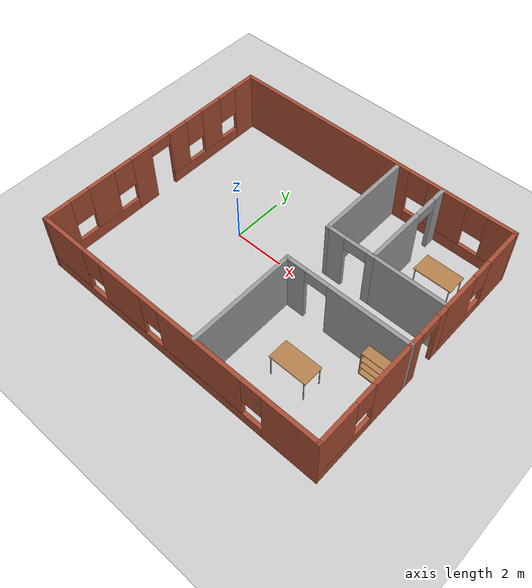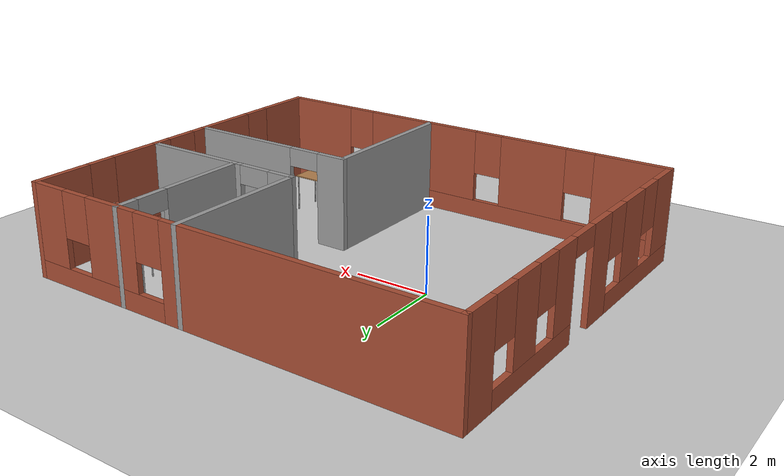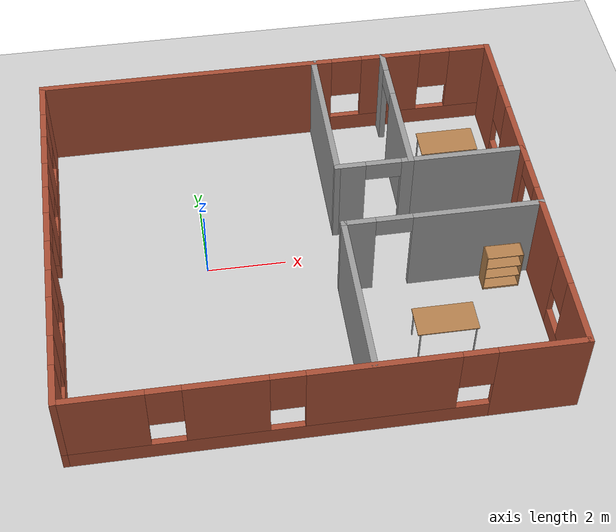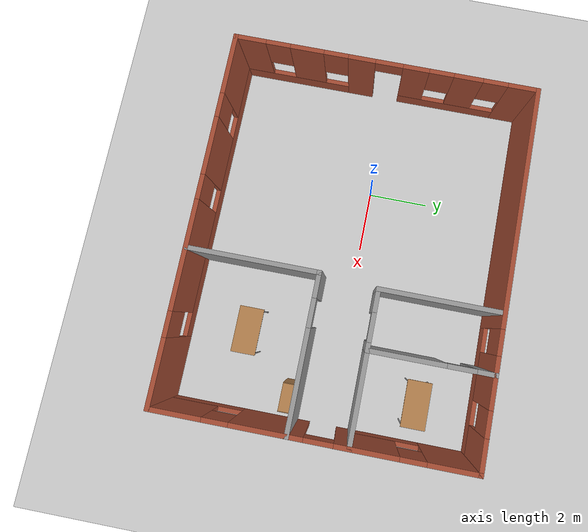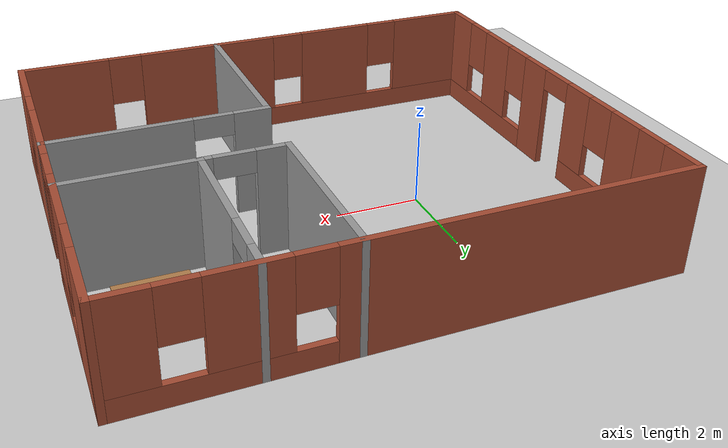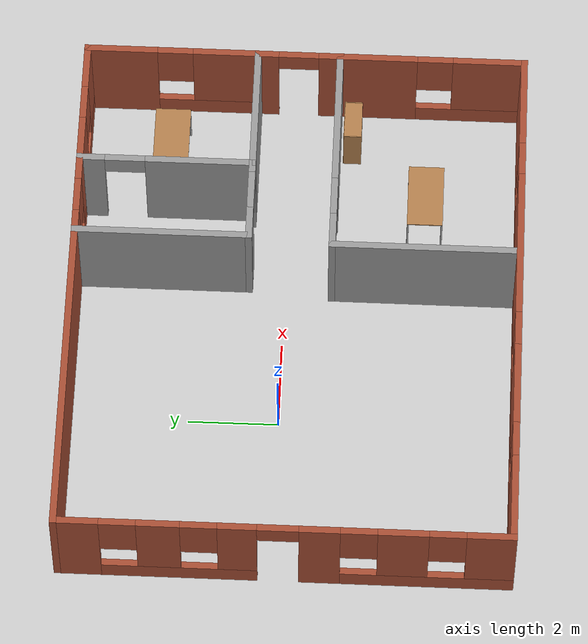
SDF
<sdf version="1.6">
 <world name="default">
  <model name="ground_plane">
   <static>1</static>
   <link name="link">
    <collision name="collision">
     <geometry><plane><normal>0 0 1</normal><size>100 100</size></plane></geometry>
     <surface>
      <contact><collide_bitmask>65535</collide_bitmask></contact>
      <friction><ode><mu>100</mu><mu2>50</mu2></ode></friction>
     </surface>
    </collision>
    <visual name="visual">
     <cast_shadows>0</cast_shadows>
     <geometry><plane><normal>0 0 1</normal><size>100 100</size></plane></geometry>
     <material>
      <script><uri>file://media/materials/scripts/gazebo.material</uri><name>Gazebo/Grey</name></script>
     </material>
    </visual>
   </link>
  </model>
  <model name="Apartment">
   <pose>2.18639 -0.27323 0 0 -0 0</pose>
   <link name="Wall_10">
    <pose>5.925 3 0 0 0 -1.57075</pose>
    <visual name="Wall_10_Visual_0">
     <pose>-1.1747 0 1.25 0 -0 0</pose>
     <geometry><box><size>1.65061 0.15 2.5</size></box></geometry>
     <material>
      <script><uri>file://media/materials/scripts/gazebo.material</uri><name>Gazebo/Bricks</name></script>
      <ambient>1 1 1 1</ambient>
     </material>
     <meta><layer>0</layer></meta>
    </visual>
    <collision name="Wall_10_Collision_0">
     <geometry><box><size>1.65061 0.15 2.5</size></box></geometry>
     <pose>-1.1747 0 1.25 0 -0 0</pose>
    </collision>
    <visual name="Wall_10_Visual_1">
     <pose>0.825305 0 0.25 0 -0 0</pose>
     <geometry><box><size>2.34939 0.15 0.5</size></box></geometry>
     <material>
      <script><uri>file://media/materials/scripts/gazebo.material</uri><name>Gazebo/Bricks</name></script>
      <ambient>1 1 1 1</ambient>
     </material>
     <meta><layer>0</layer></meta>
    </visual>
    <collision name="Wall_10_Collision_1">
     <geometry><box><size>2.34939 0.15 0.5</size></box></geometry>
     <pose>0.825305 0 0.25 0 -0 0</pose>
    </collision>
    <visual name="Wall_10_Visual_2">
     <pose>1.22531 0 1.5 0 -0 0</pose>
     <geometry><box><size>1.54939 0.15 2</size></box></geometry>
     <material>
      <script><uri>file://media/materials/scripts/gazebo.material</uri><name>Gazebo/Bricks</name></script>
      <ambient>1 1 1 1</ambient>
     </material>
     <meta><layer>0</layer></meta>
    </visual>
    <collision name="Wall_10_Collision_2">
     <geometry><box><size>1.54939 0.15 2</size></box></geometry>
     <pose>1.22531 0 1.5 0 -0 0</pose>
    </collision>
    <visual name="Wall_10_Visual_3">
     <pose>0.05061 0 1.9 0 -0 0</pose>
     <geometry><box><size>0.8 0.15 1.2</size></box></geometry>
     <material>
      <script><uri>file://media/materials/scripts/gazebo.material</uri><name>Gazebo/Bricks</name></script>
      <ambient>1 1 1 1</ambient>
     </material>
     <meta><layer>0</layer></meta>
    </visual>
    <collision name="Wall_10_Collision_3">
     <geometry><box><size>0.8 0.15 1.2</size></box></geometry>
     <pose>0.05061 0 1.9 0 -0 0</pose>
    </collision>
   </link>
   <link name="Wall_12">
    <collision name="Wall_12_Collision">
     <geometry><box><size>3 0.15 2.5</size></box></geometry>
     <pose>0 0 1.25 0 -0 0</pose>
    </collision>
    <visual name="Wall_12_Visual">
     <pose>0 0 1.25 0 -0 0</pose>
     <geometry><box><size>3 0.15 2.5</size></box></geometry>
     <material>
      <script><uri>file://media/materials/scripts/gazebo.material</uri><name>Gazebo/Grey</name></script>
      <ambient>1 1 1 1</ambient>
     </material>
     <meta><layer>0</layer></meta>
    </visual>
    <pose>4.50008 1.07506 0 0 -0 3.14159</pose>
   </link>
   <link name="Wall_14">
    <pose>3.07508 3.00006 0 0 -0 1.5708</pose>
    <visual name="Wall_14_Visual_0">
     <pose>-0.764861 0 1.25 0 -0 0</pose>
     <geometry><box><size>2.47028 0.15 2.5</size></box></geometry>
     <material>
      <script><uri>file://media/materials/scripts/gazebo.material</uri><name>Gazebo/Grey</name></script>
      <ambient>1 1 1 1</ambient>
     </material>
     <meta><layer>0</layer></meta>
    </visual>
    <collision name="Wall_14_Collision_0">
     <geometry><box><size>2.47028 0.15 2.5</size></box></geometry>
     <pose>-0.764861 0 1.25 0 -0 0</pose>
    </collision>
    <visual name="Wall_14_Visual_1">
     <pose>1.68514 0 1.25 0 -0 0</pose>
     <geometry><box><size>0.629722 0.15 2.5</size></box></geometry>
     <material>
      <script><uri>file://media/materials/scripts/gazebo.material</uri><name>Gazebo/Grey</name></script>
      <ambient>1 1 1 1</ambient>
     </material>
     <meta><layer>0</layer></meta>
    </visual>
    <collision name="Wall_14_Collision_1">
     <geometry><box><size>0.629722 0.15 2.5</size></box></geometry>
     <pose>1.68514 0 1.25 0 -0 0</pose>
    </collision>
    <visual name="Wall_14_Visual_2">
     <pose>0.920278 0 2.25 0 -0 0</pose>
     <geometry><box><size>0.9 0.15 0.5</size></box></geometry>
     <material>
      <script><uri>file://media/materials/scripts/gazebo.material</uri><name>Gazebo/Grey</name></script>
      <ambient>1 1 1 1</ambient>
     </material>
     <meta><layer>0</layer></meta>
    </visual>
    <collision name="Wall_14_Collision_2">
     <geometry><box><size>0.9 0.15 0.5</size></box></geometry>
     <pose>0.920278 0 2.25 0 -0 0</pose>
    </collision>
   </link>
   <link name="Wall_16">
    <pose>2.15008 1.07506 0 0 -0 3.14159</pose>
    <visual name="Wall_16_Visual_0">
     <pose>-0.843764 0 1.25 0 -0 0</pose>
     <geometry><box><size>0.312472 0.15 2.5</size></box></geometry>
     <material>
      <script><uri>file://media/materials/scripts/gazebo.material</uri><name>Gazebo/Grey</name></script>
      <ambient>1 1 1 1</ambient>
     </material>
     <meta><layer>0</layer></meta>
    </visual>
    <collision name="Wall_16_Collision_0">
     <geometry><box><size>0.312472 0.15 2.5</size></box></geometry>
     <pose>-0.843764 0 1.25 0 -0 0</pose>
    </collision>
    <visual name="Wall_16_Visual_1">
     <pose>0.606236 0 1.25 0 -0 0</pose>
     <geometry><box><size>0.787528 0.15 2.5</size></box></geometry>
     <material>
      <script><uri>file://media/materials/scripts/gazebo.material</uri><name>Gazebo/Grey</name></script>
      <ambient>1 1 1 1</ambient>
     </material>
     <meta><layer>0</layer></meta>
    </visual>
    <collision name="Wall_16_Collision_1">
     <geometry><box><size>0.787528 0.15 2.5</size></box></geometry>
     <pose>0.606236 0 1.25 0 -0 0</pose>
    </collision>
    <visual name="Wall_16_Visual_2">
     <pose>-0.237528 0 2.25 0 -0 0</pose>
     <geometry><box><size>0.9 0.15 0.5</size></box></geometry>
     <material>
      <script><uri>file://media/materials/scripts/gazebo.material</uri><name>Gazebo/Grey</name></script>
      <ambient>1 1 1 1</ambient>
     </material>
     <meta><layer>0</layer></meta>
    </visual>
    <collision name="Wall_16_Collision_2">
     <geometry><box><size>0.9 0.15 0.5</size></box></geometry>
     <pose>-0.237528 0 2.25 0 -0 0</pose>
    </collision>
   </link>
   <link name="Wall_18">
    <collision name="Wall_18_Collision">
     <geometry><box><size>4 0.15 2.5</size></box></geometry>
     <pose>0 0 1.25 0 -0 0</pose>
    </collision>
    <visual name="Wall_18_Visual">
     <pose>0 0 1.25 0 -0 0</pose>
     <geometry><box><size>4 0.15 2.5</size></box></geometry>
     <material>
      <script><uri>file://media/materials/scripts/gazebo.material</uri><name>Gazebo/Grey</name></script>
      <ambient>1 1 1 1</ambient>
     </material>
     <meta><layer>0</layer></meta>
    </visual>
    <pose>1.22508 3.00006 0 0 -0 1.5708</pose>
   </link>
   <link name="Wall_2">
    <pose>-8e-05 4.92495 0 0 -0 0</pose>
    <visual name="Wall_2_Visual_0">
     <pose>-2.14775 0 1.25 0 -0 0</pose>
     <geometry><box><size>7.7045 0.15 2.5</size></box></geometry>
     <material>
      <script><uri>file://media/materials/scripts/gazebo.material</uri><name>Gazebo/Bricks</name></script>
      <ambient>1 1 1 1</ambient>
     </material>
     <meta><layer>0</layer></meta>
    </visual>
    <collision name="Wall_2_Collision_0">
     <geometry><box><size>7.7045 0.15 2.5</size></box></geometry>
     <pose>-2.14775 0 1.25 0 -0 0</pose>
    </collision>
    <visual name="Wall_2_Visual_1">
     <pose>3.85225 0 0.25 0 -0 0</pose>
     <geometry><box><size>4.2955 0.15 0.5</size></box></geometry>
     <material>
      <script><uri>file://media/materials/scripts/gazebo.material</uri><name>Gazebo/Bricks</name></script>
      <ambient>1 1 1 1</ambient>
     </material>
     <meta><layer>0</layer></meta>
    </visual>
    <collision name="Wall_2_Collision_1">
     <geometry><box><size>4.2955 0.15 0.5</size></box></geometry>
     <pose>3.85225 0 0.25 0 -0 0</pose>
    </collision>
    <visual name="Wall_2_Visual_2">
     <pose>3.29794 0 1.5 0 -0 0</pose>
     <geometry><box><size>1.58688 0.15 2</size></box></geometry>
     <material>
      <script><uri>file://media/materials/scripts/gazebo.material</uri><name>Gazebo/Bricks</name></script>
      <ambient>1 1 1 1</ambient>
     </material>
     <meta><layer>0</layer></meta>
    </visual>
    <collision name="Wall_2_Collision_2">
     <geometry><box><size>1.58688 0.15 2</size></box></geometry>
     <pose>3.29794 0 1.5 0 -0 0</pose>
    </collision>
    <visual name="Wall_2_Visual_3">
     <pose>5.44569 0 1.5 0 -0 0</pose>
     <geometry><box><size>1.10862 0.15 2</size></box></geometry>
     <material>
      <script><uri>file://media/materials/scripts/gazebo.material</uri><name>Gazebo/Bricks</name></script>
      <ambient>1 1 1 1</ambient>
     </material>
     <meta><layer>0</layer></meta>
    </visual>
    <collision name="Wall_2_Collision_3">
     <geometry><box><size>1.10862 0.15 2</size></box></geometry>
     <pose>5.44569 0 1.5 0 -0 0</pose>
    </collision>
    <visual name="Wall_2_Visual_4">
     <pose>2.1045 0 1.9 0 -0 0</pose>
     <geometry><box><size>0.8 0.15 1.2</size></box></geometry>
     <material>
      <script><uri>file://media/materials/scripts/gazebo.material</uri><name>Gazebo/Bricks</name></script>
      <ambient>1 1 1 1</ambient>
     </material>
     <meta><layer>0</layer></meta>
    </visual>
    <collision name="Wall_2_Collision_4">
     <geometry><box><size>0.8 0.15 1.2</size></box></geometry>
     <pose>2.1045 0 1.9 0 -0 0</pose>
    </collision>
    <visual name="Wall_2_Visual_5">
     <pose>4.49137 0 1.9 0 -0 0</pose>
     <geometry><box><size>0.8 0.15 1.2</size></box></geometry>
     <material>
      <script><uri>file://media/materials/scripts/gazebo.material</uri><name>Gazebo/Bricks</name></script>
      <ambient>1 1 1 1</ambient>
     </material>
     <meta><layer>0</layer></meta>
    </visual>
    <collision name="Wall_2_Collision_5">
     <geometry><box><size>0.8 0.15 1.2</size></box></geometry>
     <pose>4.49137 0 1.9 0 -0 0</pose>
    </collision>
   </link>
   <link name="Wall_20">
    <pose>5.92508 0.150055 0 0 0 -1.5708</pose>
    <visual name="Wall_20_Visual_0">
     <pose>-0.728955 0 1.25 0 -0 0</pose>
     <geometry><box><size>0.54209 0.15 2.5</size></box></geometry>
     <material>
      <script><uri>file://media/materials/scripts/gazebo.material</uri><name>Gazebo/Bricks</name></script>
      <ambient>1 1 1 1</ambient>
     </material>
     <meta><layer>0</layer></meta>
    </visual>
    <collision name="Wall_20_Collision_0">
     <geometry><box><size>0.54209 0.15 2.5</size></box></geometry>
     <pose>-0.728955 0 1.25 0 -0 0</pose>
    </collision>
    <visual name="Wall_20_Visual_1">
     <pose>0.721045 0 1.25 0 -0 0</pose>
     <geometry><box><size>0.55791 0.15 2.5</size></box></geometry>
     <material>
      <script><uri>file://media/materials/scripts/gazebo.material</uri><name>Gazebo/Bricks</name></script>
      <ambient>1 1 1 1</ambient>
     </material>
     <meta><layer>0</layer></meta>
    </visual>
    <collision name="Wall_20_Collision_1">
     <geometry><box><size>0.55791 0.15 2.5</size></box></geometry>
     <pose>0.721045 0 1.25 0 -0 0</pose>
    </collision>
    <visual name="Wall_20_Visual_2">
     <pose>-0.00791 0 2.25 0 -0 0</pose>
     <geometry><box><size>0.9 0.15 0.5</size></box></geometry>
     <material>
      <script><uri>file://media/materials/scripts/gazebo.material</uri><name>Gazebo/Bricks</name></script>
      <ambient>1 1 1 1</ambient>
     </material>
     <meta><layer>0</layer></meta>
    </visual>
    <collision name="Wall_20_Collision_2">
     <geometry><box><size>0.9 0.15 0.5</size></box></geometry>
     <pose>-0.00791 0 2.25 0 -0 0</pose>
    </collision>
   </link>
   <link name="Wall_22">
    <pose>3.50008 -0.774945 0 0 -0 3.14159</pose>
    <visual name="Wall_22_Visual_0">
     <pose>-0.878308 0 1.25 0 -0 0</pose>
     <geometry><box><size>3.24338 0.15 2.5</size></box></geometry>
     <material>
      <script><uri>file://media/materials/scripts/gazebo.material</uri><name>Gazebo/Grey</name></script>
      <ambient>1 1 1 1</ambient>
     </material>
     <meta><layer>0</layer></meta>
    </visual>
    <collision name="Wall_22_Collision_0">
     <geometry><box><size>3.24338 0.15 2.5</size></box></geometry>
     <pose>-0.878308 0 1.25 0 -0 0</pose>
    </collision>
    <visual name="Wall_22_Visual_1">
     <pose>2.07169 0 1.25 0 -0 0</pose>
     <geometry><box><size>0.856616 0.15 2.5</size></box></geometry>
     <material>
      <script><uri>file://media/materials/scripts/gazebo.material</uri><name>Gazebo/Grey</name></script>
      <ambient>1 1 1 1</ambient>
     </material>
     <meta><layer>0</layer></meta>
    </visual>
    <collision name="Wall_22_Collision_1">
     <geometry><box><size>0.856616 0.15 2.5</size></box></geometry>
     <pose>2.07169 0 1.25 0 -0 0</pose>
    </collision>
    <visual name="Wall_22_Visual_2">
     <pose>1.19338 0 2.25 0 -0 0</pose>
     <geometry><box><size>0.9 0.15 0.5</size></box></geometry>
     <material>
      <script><uri>file://media/materials/scripts/gazebo.material</uri><name>Gazebo/Grey</name></script>
      <ambient>1 1 1 1</ambient>
     </material>
     <meta><layer>0</layer></meta>
    </visual>
    <collision name="Wall_22_Collision_2">
     <geometry><box><size>0.9 0.15 0.5</size></box></geometry>
     <pose>1.19338 0 2.25 0 -0 0</pose>
    </collision>
   </link>
   <link name="Wall_24">
    <collision name="Wall_24_Collision">
     <geometry><box><size>4.25 0.15 2.5</size></box></geometry>
     <pose>0 0 1.25 0 -0 0</pose>
    </collision>
    <visual name="Wall_24_Visual">
     <pose>0 0 1.25 0 -0 0</pose>
     <geometry><box><size>4.25 0.15 2.5</size></box></geometry>
     <material>
      <script><uri>file://media/materials/scripts/gazebo.material</uri><name>Gazebo/Grey</name></script>
      <ambient>1 1 1 1</ambient>
     </material>
     <meta><layer>0</layer></meta>
    </visual>
    <pose>1.07508 -2.82495 0 0 0 -1.5708</pose>
   </link>
   <link name="Wall_26">
    <pose>5.925 -2.85 0 0 0 -1.57083</pose>
    <visual name="Wall_26_Visual_0">
     <pose>-1.2417 0 1.25 0 -0 0</pose>
     <geometry><box><size>1.81671 0.15 2.5</size></box></geometry>
     <material>
      <script><uri>file://media/materials/scripts/gazebo.material</uri><name>Gazebo/Bricks</name></script>
      <ambient>1 1 1 1</ambient>
     </material>
     <meta><layer>0</layer></meta>
    </visual>
    <collision name="Wall_26_Collision_0">
     <geometry><box><size>1.81671 0.15 2.5</size></box></geometry>
     <pose>-1.2417 0 1.25 0 -0 0</pose>
    </collision>
    <visual name="Wall_26_Visual_1">
     <pose>0.908357 0 0.25 0 -0 0</pose>
     <geometry><box><size>2.48339 0.15 0.5</size></box></geometry>
     <material>
      <script><uri>file://media/materials/scripts/gazebo.material</uri><name>Gazebo/Bricks</name></script>
      <ambient>1 1 1 1</ambient>
     </material>
     <meta><layer>0</layer></meta>
    </visual>
    <collision name="Wall_26_Collision_1">
     <geometry><box><size>2.48339 0.15 0.5</size></box></geometry>
     <pose>0.908357 0 0.25 0 -0 0</pose>
    </collision>
    <visual name="Wall_26_Visual_2">
     <pose>1.30836 0 1.5 0 -0 0</pose>
     <geometry><box><size>1.68339 0.15 2</size></box></geometry>
     <material>
      <script><uri>file://media/materials/scripts/gazebo.material</uri><name>Gazebo/Bricks</name></script>
      <ambient>1 1 1 1</ambient>
     </material>
     <meta><layer>0</layer></meta>
    </visual>
    <collision name="Wall_26_Collision_2">
     <geometry><box><size>1.68339 0.15 2</size></box></geometry>
     <pose>1.30836 0 1.5 0 -0 0</pose>
    </collision>
    <visual name="Wall_26_Visual_3">
     <pose>0.06666 0 1.9 0 -0 0</pose>
     <geometry><box><size>0.8 0.15 1.2</size></box></geometry>
     <material>
      <script><uri>file://media/materials/scripts/gazebo.material</uri><name>Gazebo/Bricks</name></script>
      <ambient>1 1 1 1</ambient>
     </material>
     <meta><layer>0</layer></meta>
    </visual>
    <collision name="Wall_26_Collision_3">
     <geometry><box><size>0.8 0.15 1.2</size></box></geometry>
     <pose>0.06666 0 1.9 0 -0 0</pose>
    </collision>
   </link>
   <link name="Wall_28">
    <pose>-5.92508 -5.2e-05 0 0 0 -1.5708</pose>
    <visual name="Wall_28_Visual_0">
     <pose>-4.47814 0 1.25 0 -0 0</pose>
     <geometry><box><size>1.04371 0.15 2.5</size></box></geometry>
     <material>
      <script><uri>file://media/materials/scripts/gazebo.material</uri><name>Gazebo/Bricks</name></script>
      <ambient>0.760784 0.662745 0.627451 1</ambient>
     </material>
     <meta><layer>0</layer></meta>
    </visual>
    <collision name="Wall_28_Collision_0">
     <geometry><box><size>1.04371 0.15 2.5</size></box></geometry>
     <pose>-4.47814 0 1.25 0 -0 0</pose>
    </collision>
    <visual name="Wall_28_Visual_1">
     <pose>0.777234 0 1.25 0 -0 0</pose>
     <geometry><box><size>0.88959 0.15 2.5</size></box></geometry>
     <material>
      <script><uri>file://media/materials/scripts/gazebo.material</uri><name>Gazebo/Bricks</name></script>
      <ambient>0.760784 0.662745 0.627451 1</ambient>
     </material>
     <meta><layer>0</layer></meta>
    </visual>
    <collision name="Wall_28_Collision_1">
     <geometry><box><size>0.88959 0.15 2.5</size></box></geometry>
     <pose>0.777234 0 1.25 0 -0 0</pose>
    </collision>
    <visual name="Wall_28_Visual_2">
     <pose>-2.26192 0 0.25 0 -0 0</pose>
     <geometry><box><size>3.38872 0.15 0.5</size></box></geometry>
     <material>
      <script><uri>file://media/materials/scripts/gazebo.material</uri><name>Gazebo/Bricks</name></script>
      <ambient>0.760784 0.662745 0.627451 1</ambient>
     </material>
     <meta><layer>0</layer></meta>
    </visual>
    <collision name="Wall_28_Collision_2">
     <geometry><box><size>3.38872 0.15 0.5</size></box></geometry>
     <pose>-2.26192 0 0.25 0 -0 0</pose>
    </collision>
    <visual name="Wall_28_Visual_3">
     <pose>3.11102 0 0.25 0 -0 0</pose>
     <geometry><box><size>3.77797 0.15 0.5</size></box></geometry>
     <material>
      <script><uri>file://media/materials/scripts/gazebo.material</uri><name>Gazebo/Bricks</name></script>
      <ambient>0.760784 0.662745 0.627451 1</ambient>
     </material>
     <meta><layer>0</layer></meta>
    </visual>
    <collision name="Wall_28_Collision_3">
     <geometry><box><size>3.77797 0.15 0.5</size></box></geometry>
     <pose>3.11102 0 0.25 0 -0 0</pose>
    </collision>
    <visual name="Wall_28_Visual_4">
     <pose>-2.68649 0 1.5 0 -0 0</pose>
     <geometry><box><size>0.93959 0.15 2</size></box></geometry>
     <material>
      <script><uri>file://media/materials/scripts/gazebo.material</uri><name>Gazebo/Bricks</name></script>
      <ambient>0.760784 0.662745 0.627451 1</ambient>
     </material>
     <meta><layer>0</layer></meta>
    </visual>
    <collision name="Wall_28_Collision_4">
     <geometry><box><size>0.93959 0.15 2</size></box></geometry>
     <pose>-2.68649 0 1.5 0 -0 0</pose>
    </collision>
    <visual name="Wall_28_Visual_5">
     <pose>-0.992128 0 1.5 0 -0 0</pose>
     <geometry><box><size>0.849134 0.15 2</size></box></geometry>
     <material>
      <script><uri>file://media/materials/scripts/gazebo.material</uri><name>Gazebo/Bricks</name></script>
      <ambient>0.760784 0.662745 0.627451 1</ambient>
     </material>
     <meta><layer>0</layer></meta>
    </visual>
    <collision name="Wall_28_Collision_5">
     <geometry><box><size>0.849134 0.15 2</size></box></geometry>
     <pose>-0.992128 0 1.5 0 -0 0</pose>
    </collision>
    <visual name="Wall_28_Visual_6">
     <pose>-0.992128 0 1.5 0 -0 0</pose>
     <geometry><box><size>0.849134 0.15 2</size></box></geometry>
     <material>
      <script><uri>file://media/materials/scripts/gazebo.material</uri><name>Gazebo/Bricks</name></script>
      <ambient>0.760784 0.662745 0.627451 1</ambient>
     </material>
     <meta><layer>0</layer></meta>
    </visual>
    <collision name="Wall_28_Collision_6">
     <geometry><box><size>0.849134 0.15 2</size></box></geometry>
     <pose>-0.992128 0 1.5 0 -0 0</pose>
    </collision>
    <visual name="Wall_28_Visual_7">
     <pose>2.57274 0 1.5 0 -0 0</pose>
     <geometry><box><size>1.10141 0.15 2</size></box></geometry>
     <material>
      <script><uri>file://media/materials/scripts/gazebo.material</uri><name>Gazebo/Bricks</name></script>
      <ambient>0.760784 0.662745 0.627451 1</ambient>
     </material>
     <meta><layer>0</layer></meta>
    </visual>
    <collision name="Wall_28_Collision_7">
     <geometry><box><size>1.10141 0.15 2</size></box></geometry>
     <pose>2.57274 0 1.5 0 -0 0</pose>
    </collision>
    <visual name="Wall_28_Visual_8">
     <pose>4.46172 0 1.5 0 -0 0</pose>
     <geometry><box><size>1.07656 0.15 2</size></box></geometry>
     <material>
      <script><uri>file://media/materials/scripts/gazebo.material</uri><name>Gazebo/Bricks</name></script>
      <ambient>0.760784 0.662745 0.627451 1</ambient>
     </material>
     <meta><layer>0</layer></meta>
    </visual>
    <collision name="Wall_28_Collision_8">
     <geometry><box><size>1.07656 0.15 2</size></box></geometry>
     <pose>4.46172 0 1.5 0 -0 0</pose>
    </collision>
    <visual name="Wall_28_Visual_9">
     <pose>-3.55628 0 1.9 0 -0 0</pose>
     <geometry><box><size>0.8 0.15 1.2</size></box></geometry>
     <material>
      <script><uri>file://media/materials/scripts/gazebo.material</uri><name>Gazebo/Bricks</name></script>
      <ambient>0.760784 0.662745 0.627451 1</ambient>
     </material>
     <meta><layer>0</layer></meta>
    </visual>
    <collision name="Wall_28_Collision_9">
     <geometry><box><size>0.8 0.15 1.2</size></box></geometry>
     <pose>-3.55628 0 1.9 0 -0 0</pose>
    </collision>
    <visual name="Wall_28_Visual_10">
     <pose>1.62203 0 1.9 0 -0 0</pose>
     <geometry><box><size>0.8 0.15 1.2</size></box></geometry>
     <material>
      <script><uri>file://media/materials/scripts/gazebo.material</uri><name>Gazebo/Bricks</name></script>
      <ambient>0.760784 0.662745 0.627451 1</ambient>
     </material>
     <meta><layer>0</layer></meta>
    </visual>
    <collision name="Wall_28_Collision_10">
     <geometry><box><size>0.8 0.15 1.2</size></box></geometry>
     <pose>1.62203 0 1.9 0 -0 0</pose>
    </collision>
    <visual name="Wall_28_Visual_11">
     <pose>-1.81669 0 1.9 0 -0 0</pose>
     <geometry><box><size>0.8 0.15 1.2</size></box></geometry>
     <material>
      <script><uri>file://media/materials/scripts/gazebo.material</uri><name>Gazebo/Bricks</name></script>
      <ambient>0.760784 0.662745 0.627451 1</ambient>
     </material>
     <meta><layer>0</layer></meta>
    </visual>
    <collision name="Wall_28_Collision_11">
     <geometry><box><size>0.8 0.15 1.2</size></box></geometry>
     <pose>-1.81669 0 1.9 0 -0 0</pose>
    </collision>
    <visual name="Wall_28_Visual_12">
     <pose>3.52344 0 1.9 0 -0 0</pose>
     <geometry><box><size>0.8 0.15 1.2</size></box></geometry>
     <material>
      <script><uri>file://media/materials/scripts/gazebo.material</uri><name>Gazebo/Bricks</name></script>
      <ambient>0.760784 0.662745 0.627451 1</ambient>
     </material>
     <meta><layer>0</layer></meta>
    </visual>
    <collision name="Wall_28_Collision_12">
     <geometry><box><size>0.8 0.15 1.2</size></box></geometry>
     <pose>3.52344 0 1.9 0 -0 0</pose>
    </collision>
    <visual name="Wall_28_Visual_13">
     <pose>-0.11756 0 2.25 0 -0 0</pose>
     <geometry><box><size>0.9 0.15 0.5</size></box></geometry>
     <material>
      <script><uri>file://media/materials/scripts/gazebo.material</uri><name>Gazebo/Bricks</name></script>
      <ambient>0.760784 0.662745 0.627451 1</ambient>
     </material>
     <meta><layer>0</layer></meta>
    </visual>
    <collision name="Wall_28_Collision_13">
     <geometry><box><size>0.9 0.15 0.5</size></box></geometry>
     <pose>-0.11756 0 2.25 0 -0 0</pose>
    </collision>
    <visual name="Wall_28_Visual_14">
     <pose>-0.11756 0 2.25 0 -0 0</pose>
     <geometry><box><size>0.9 0.15 0.5</size></box></geometry>
     <material>
      <script><uri>file://media/materials/scripts/gazebo.material</uri><name>Gazebo/Bricks</name></script>
      <ambient>0.760784 0.662745 0.627451 1</ambient>
     </material>
     <meta><layer>0</layer></meta>
    </visual>
    <collision name="Wall_28_Collision_14">
     <geometry><box><size>0.9 0.15 0.5</size></box></geometry>
     <pose>-0.11756 0 2.25 0 -0 0</pose>
    </collision>
   </link>
   <link name="Wall_8">
    <pose>-8e-05 -4.92505 0 0 -0 3.14159</pose>
    <visual name="Wall_8_Visual_0">
     <pose>-4.91976 0 1.25 0 -0 0</pose>
     <geometry><box><size>2.16047 0.15 2.5</size></box></geometry>
     <material>
      <script><uri>file://media/materials/scripts/gazebo.material</uri><name>Gazebo/Bricks</name></script>
      <ambient>0.760784 0.662745 0.627451 1</ambient>
     </material>
     <meta><layer>0</layer></meta>
    </visual>
    <collision name="Wall_8_Collision_0">
     <geometry><box><size>2.16047 0.15 2.5</size></box></geometry>
     <pose>-4.91976 0 1.25 0 -0 0</pose>
    </collision>
    <visual name="Wall_8_Visual_1">
     <pose>1.08024 0 0.25 0 -0 0</pose>
     <geometry><box><size>9.83953 0.15 0.5</size></box></geometry>
     <material>
      <script><uri>file://media/materials/scripts/gazebo.material</uri><name>Gazebo/Bricks</name></script>
      <ambient>0.760784 0.662745 0.627451 1</ambient>
     </material>
     <meta><layer>0</layer></meta>
    </visual>
    <collision name="Wall_8_Collision_1">
     <geometry><box><size>9.83953 0.15 0.5</size></box></geometry>
     <pose>1.08024 0 0.25 0 -0 0</pose>
    </collision>
    <visual name="Wall_8_Visual_2">
     <pose>-1.29539 0 1.5 0 -0 0</pose>
     <geometry><box><size>3.48829 0.15 2</size></box></geometry>
     <material>
      <script><uri>file://media/materials/scripts/gazebo.material</uri><name>Gazebo/Bricks</name></script>
      <ambient>0.760784 0.662745 0.627451 1</ambient>
     </material>
     <meta><layer>0</layer></meta>
    </visual>
    <collision name="Wall_8_Collision_2">
     <geometry><box><size>3.48829 0.15 2</size></box></geometry>
     <pose>-1.29539 0 1.5 0 -0 0</pose>
    </collision>
    <visual name="Wall_8_Visual_3">
     <pose>2.20402 0 1.5 0 -0 0</pose>
     <geometry><box><size>1.91052 0.15 2</size></box></geometry>
     <material>
      <script><uri>file://media/materials/scripts/gazebo.material</uri><name>Gazebo/Bricks</name></script>
      <ambient>0.760784 0.662745 0.627451 1</ambient>
     </material>
     <meta><layer>0</layer></meta>
    </visual>
    <collision name="Wall_8_Collision_3">
     <geometry><box><size>1.91052 0.15 2</size></box></geometry>
     <pose>2.20402 0 1.5 0 -0 0</pose>
    </collision>
    <visual name="Wall_8_Visual_4">
     <pose>4.97964 0 1.5 0 -0 0</pose>
     <geometry><box><size>2.04072 0.15 2</size></box></geometry>
     <material>
      <script><uri>file://media/materials/scripts/gazebo.material</uri><name>Gazebo/Bricks</name></script>
      <ambient>0.760784 0.662745 0.627451 1</ambient>
     </material>
     <meta><layer>0</layer></meta>
    </visual>
    <collision name="Wall_8_Collision_4">
     <geometry><box><size>2.04072 0.15 2</size></box></geometry>
     <pose>4.97964 0 1.5 0 -0 0</pose>
    </collision>
    <visual name="Wall_8_Visual_5">
     <pose>-3.43953 0 1.9 0 -0 0</pose>
     <geometry><box><size>0.8 0.15 1.2</size></box></geometry>
     <material>
      <script><uri>file://media/materials/scripts/gazebo.material</uri><name>Gazebo/Bricks</name></script>
      <ambient>0.760784 0.662745 0.627451 1</ambient>
     </material>
     <meta><layer>0</layer></meta>
    </visual>
    <collision name="Wall_8_Collision_5">
     <geometry><box><size>0.8 0.15 1.2</size></box></geometry>
     <pose>-3.43953 0 1.9 0 -0 0</pose>
    </collision>
    <visual name="Wall_8_Visual_6">
     <pose>0.848761 0 1.9 0 -0 0</pose>
     <geometry><box><size>0.8 0.15 1.2</size></box></geometry>
     <material>
      <script><uri>file://media/materials/scripts/gazebo.material</uri><name>Gazebo/Bricks</name></script>
      <ambient>0.760784 0.662745 0.627451 1</ambient>
     </material>
     <meta><layer>0</layer></meta>
    </visual>
    <collision name="Wall_8_Collision_6">
     <geometry><box><size>0.8 0.15 1.2</size></box></geometry>
     <pose>0.848761 0 1.9 0 -0 0</pose>
    </collision>
    <visual name="Wall_8_Visual_7">
     <pose>3.55929 0 1.9 0 -0 0</pose>
     <geometry><box><size>0.8 0.15 1.2</size></box></geometry>
     <material>
      <script><uri>file://media/materials/scripts/gazebo.material</uri><name>Gazebo/Bricks</name></script>
      <ambient>0.760784 0.662745 0.627451 1</ambient>
     </material>
     <meta><layer>0</layer></meta>
    </visual>
    <collision name="Wall_8_Collision_7">
     <geometry><box><size>0.8 0.15 1.2</size></box></geometry>
     <pose>3.55929 0 1.9 0 -0 0</pose>
    </collision>
   </link>
   <static>1</static>
  </model>
  <model name="bookshelf">
   <static>1</static>
   <link name="link">
    <inertial><mass>1</mass></inertial>
    <collision name="back">
     <pose>0 0.005 0.6 0 -0 0</pose>
     <geometry><box><size>0.9 0.01 1.2</size></box></geometry>
    </collision>
    <visual name="visual1">
     <pose>0 0.005 0.6 0 -0 0</pose>
     <geometry><box><size>0.9 0.01 1.2</size></box></geometry>
     <material>
      <script><uri>file://media/materials/scripts/gazebo.material</uri><name>Gazebo/Wood</name></script>
     </material>
    </visual>
    <collision name="left_side">
     <pose>0.45 -0.195 0.6 0 -0 0</pose>
     <geometry><box><size>0.02 0.4 1.2</size></box></geometry>
    </collision>
    <visual name="visual2">
     <pose>0.45 -0.195 0.6 0 -0 0</pose>
     <geometry><box><size>0.02 0.4 1.2</size></box></geometry>
     <material>
      <script><uri>file://media/materials/scripts/gazebo.material</uri><name>Gazebo/Wood</name></script>
     </material>
    </visual>
    <collision name="right_side">
     <pose>-0.45 -0.195 0.6 0 -0 0</pose>
     <geometry><box><size>0.02 0.4 1.2</size></box></geometry>
    </collision>
    <visual name="visual3">
     <pose>-0.45 -0.195 0.6 0 -0 0</pose>
     <geometry><box><size>0.02 0.4 1.2</size></box></geometry>
     <material>
      <script><uri>file://media/materials/scripts/gazebo.material</uri><name>Gazebo/Wood</name></script>
     </material>
    </visual>
    <collision name="bottom">
     <pose>0 -0.195 0.03 0 -0 0</pose>
     <geometry><box><size>0.88 0.4 0.06</size></box></geometry>
    </collision>
    <visual name="visual4">
     <pose>0 -0.195 0.03 0 -0 0</pose>
     <geometry><box><size>0.88 0.4 0.06</size></box></geometry>
     <material>
      <script><uri>file://media/materials/scripts/gazebo.material</uri><name>Gazebo/Wood</name></script>
     </material>
    </visual>
    <collision name="top">
     <pose>0 -0.195 1.19 0 -0 0</pose>
     <geometry><box><size>0.88 0.4 0.02</size></box></geometry>
    </collision>
    <visual name="visual5">
     <pose>0 -0.195 1.19 0 -0 0</pose>
     <geometry><box><size>0.88 0.4 0.02</size></box></geometry>
     <material>
      <script><uri>file://media/materials/scripts/gazebo.material</uri><name>Gazebo/Wood</name></script>
     </material>
    </visual>
    <collision name="low_shelf">
     <pose>0 -0.195 0.43 0 -0 0</pose>
     <geometry><box><size>0.88 0.4 0.02</size></box></geometry>
    </collision>
    <visual name="visual6">
     <pose>0 -0.195 0.43 0 -0 0</pose>
     <geometry><box><size>0.88 0.4 0.02</size></box></geometry>
     <material>
      <script><uri>file://media/materials/scripts/gazebo.material</uri><name>Gazebo/Wood</name></script>
     </material>
    </visual>
    <collision name="high_shelf">
     <pose>0 -0.195 0.8 0 -0 0</pose>
     <geometry><box><size>0.88 0.4 0.02</size></box></geometry>
    </collision>
    <visual name="visual7">
     <pose>0 -0.195 0.8 0 -0 0</pose>
     <geometry><box><size>0.88 0.4 0.02</size></box></geometry>
     <material>
      <script><uri>file://media/materials/scripts/gazebo.material</uri><name>Gazebo/Wood</name></script>
     </material>
    </visual>
   </link>
   <pose>7.24808 -1.18985 0 0 -0 0</pose>
  </model>
  <model name="table">
   <static>1</static>
   <link name="link">
    <collision name="surface">
     <pose>0 0 1 0 -0 0</pose>
     <geometry><box><size>1.5 0.8 0.03</size></box></geometry>
     <surface><friction><ode><mu>0.6</mu><mu2>0.6</mu2></ode></friction></surface>
    </collision>
    <visual name="visual1">
     <pose>0 0 1 0 -0 0</pose>
     <geometry><box><size>1.5 0.8 0.03</size></box></geometry>
     <material>
      <script><uri>file://media/materials/scripts/gazebo.material</uri><name>Gazebo/Wood</name></script>
     </material>
    </visual>
    <collision name="front_left_leg">
     <pose>0.68 0.38 0.5 0 -0 0</pose>
     <geometry><cylinder><radius>0.02</radius><length>1</length></cylinder></geometry>
    </collision>
    <visual name="front_left_leg">
     <pose>0.68 0.38 0.5 0 -0 0</pose>
     <geometry><cylinder><radius>0.02</radius><length>1</length></cylinder></geometry>
     <material>
      <script><uri>file://media/materials/scripts/gazebo.material</uri><name>Gazebo/Grey</name></script>
     </material>
    </visual>
    <collision name="front_right_leg">
     <pose>0.68 -0.38 0.5 0 -0 0</pose>
     <geometry><cylinder><radius>0.02</radius><length>1</length></cylinder></geometry>
    </collision>
    <visual name="front_right_leg">
     <pose>0.68 -0.38 0.5 0 -0 0</pose>
     <geometry><cylinder><radius>0.02</radius><length>1</length></cylinder></geometry>
     <material>
      <script><uri>file://media/materials/scripts/gazebo.material</uri><name>Gazebo/Grey</name></script>
     </material>
    </visual>
    <collision name="back_right_leg">
     <pose>-0.68 -0.38 0.5 0 -0 0</pose>
     <geometry><cylinder><radius>0.02</radius><length>1</length></cylinder></geometry>
    </collision>
    <visual name="back_right_leg">
     <pose>-0.68 -0.38 0.5 0 -0 0</pose>
     <geometry><cylinder><radius>0.02</radius><length>1</length></cylinder></geometry>
     <material>
      <script><uri>file://media/materials/scripts/gazebo.material</uri><name>Gazebo/Grey</name></script>
     </material>
    </visual>
    <collision name="back_left_leg">
     <pose>-0.68 0.38 0.5 0 -0 0</pose>
     <geometry><cylinder><radius>0.02</radius><length>1</length></cylinder></geometry>
    </collision>
    <visual name="back_left_leg">
     <pose>-0.68 0.38 0.5 0 -0 0</pose>
     <geometry><cylinder><radius>0.02</radius><length>1</length></cylinder></geometry>
     <material>
      <script><uri>file://media/materials/scripts/gazebo.material</uri><name>Gazebo/Grey</name></script>
     </material>
    </visual>
   </link>
   <pose>6.7142 2.71033 0 0 -0 0</pose>
  </model>
  <model name="table_0">
   <static>1</static>
   <link name="link">
    <collision name="surface">
     <pose>0 0 1 0 -0 0</pose>
     <geometry><box><size>1.5 0.8 0.03</size></box></geometry>
     <surface><friction><ode><mu>0.6</mu><mu2>0.6</mu2></ode></friction></surface>
    </collision>
    <visual name="visual1">
     <pose>0 0 1 0 -0 0</pose>
     <geometry><box><size>1.5 0.8 0.03</size></box></geometry>
     <material>
      <script><uri>file://media/materials/scripts/gazebo.material</uri><name>Gazebo/Wood</name></script>
     </material>
    </visual>
    <collision name="front_left_leg">
     <pose>0.68 0.38 0.5 0 -0 0</pose>
     <geometry><cylinder><radius>0.02</radius><length>1</length></cylinder></geometry>
    </collision>
    <visual name="front_left_leg">
     <pose>0.68 0.38 0.5 0 -0 0</pose>
     <geometry><cylinder><radius>0.02</radius><length>1</length></cylinder></geometry>
     <material>
      <script><uri>file://media/materials/scripts/gazebo.material</uri><name>Gazebo/Grey</name></script>
     </material>
    </visual>
    <collision name="front_right_leg">
     <pose>0.68 -0.38 0.5 0 -0 0</pose>
     <geometry><cylinder><radius>0.02</radius><length>1</length></cylinder></geometry>
    </collision>
    <visual name="front_right_leg">
     <pose>0.68 -0.38 0.5 0 -0 0</pose>
     <geometry><cylinder><radius>0.02</radius><length>1</length></cylinder></geometry>
     <material>
      <script><uri>file://media/materials/scripts/gazebo.material</uri><name>Gazebo/Grey</name></script>
     </material>
    </visual>
    <collision name="back_right_leg">
     <pose>-0.68 -0.38 0.5 0 -0 0</pose>
     <geometry><cylinder><radius>0.02</radius><length>1</length></cylinder></geometry>
    </collision>
    <visual name="back_right_leg">
     <pose>-0.68 -0.38 0.5 0 -0 0</pose>
     <geometry><cylinder><radius>0.02</radius><length>1</length></cylinder></geometry>
     <material>
      <script><uri>file://media/materials/scripts/gazebo.material</uri><name>Gazebo/Grey</name></script>
     </material>
    </visual>
    <collision name="back_left_leg">
     <pose>-0.68 0.38 0.5 0 -0 0</pose>
     <geometry><cylinder><radius>0.02</radius><length>1</length></cylinder></geometry>
    </collision>
    <visual name="back_left_leg">
     <pose>-0.68 0.38 0.5 0 -0 0</pose>
     <geometry><cylinder><radius>0.02</radius><length>1</length></cylinder></geometry>
     <material>
      <script><uri>file://media/materials/scripts/gazebo.material</uri><name>Gazebo/Grey</name></script>
     </material>
    </visual>
   </link>
   <pose>5.42519 -3.08585 0 0 -0 0</pose>
  </model>
 </world>
</sdf>
